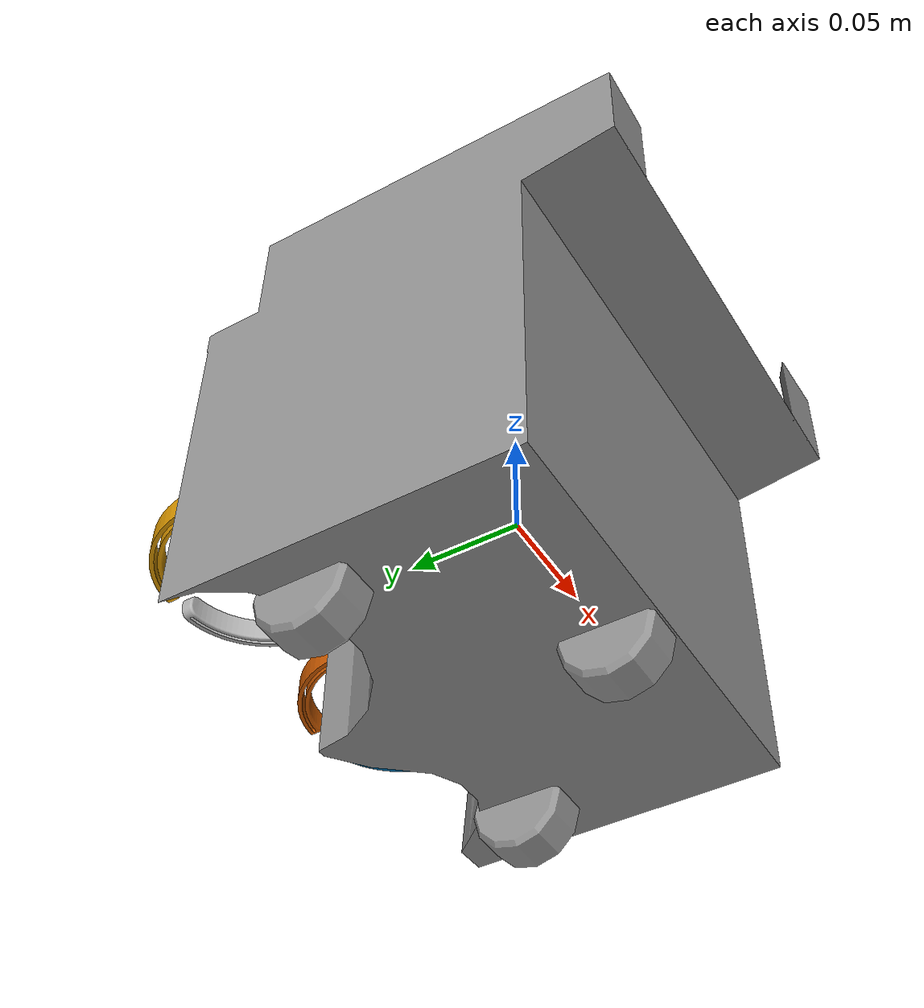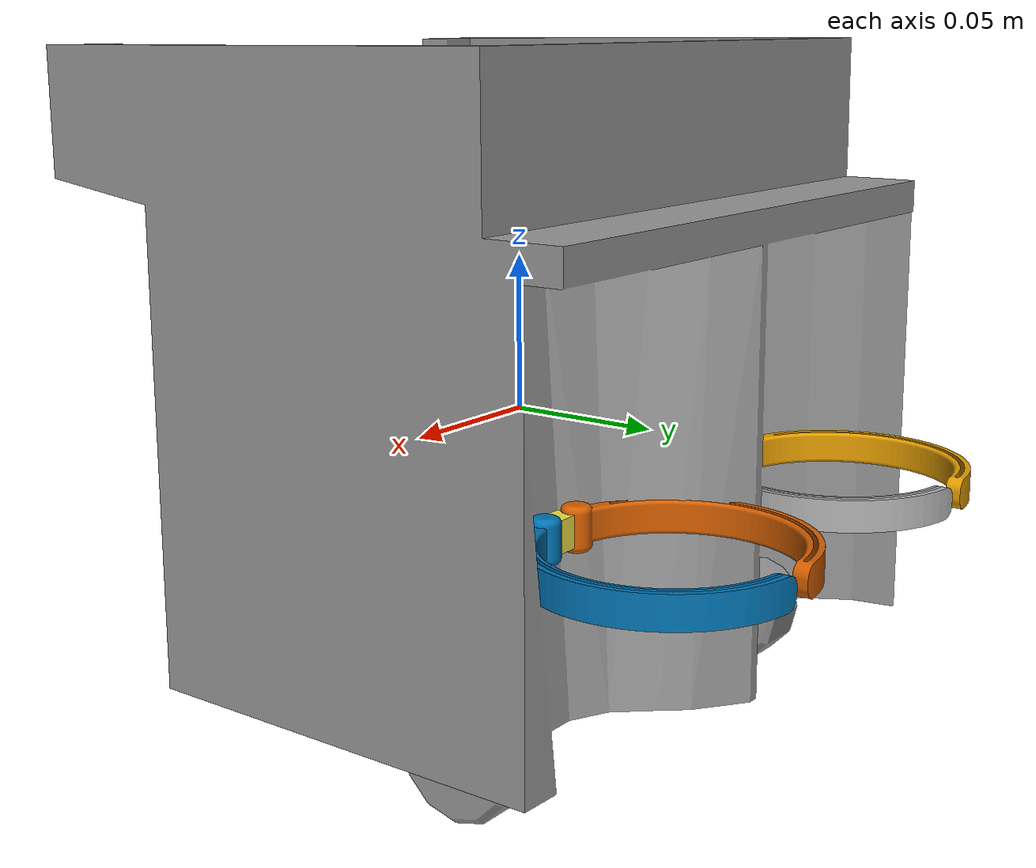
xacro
<?xml version="1.0"?>

<robot name="pikea" xmlns:xacro="http://ros.org/wiki/xacro">
  <xacro:property name="pi" value="3.1415926535897931" />

  <!-- The body -->
  <xacro:include filename="$(find nucobot_description)/pikea/urdf/pikea_base.urdf.xacro" />
  <xacro:pikea_base_macro wheel_h="-0.08"/>

  <!-- Gripper(s) -->
  <xacro:include filename="$(find nucobot_description)/pikea/urdf/pikea_gripper.urdf.xacro" />
  <xacro:gripper name="gripper_1" parent="base_link">
     <origin xyz=" 0.05 0.05 -0.02" rpy="0 0 0"/>
  </xacro:gripper>
  <xacro:gripper name="gripper_2" parent="base_link">
     <origin xyz="-0.05 0.05 -0.02" rpy="0 0 0"/>
  </xacro:gripper>

  <!-- Wheels -->
  <xacro:include filename="$(find nucobot_description)/pikea/urdf/pikea_diff_drive.urdf.xacro" />
  <xacro:diff_drive name="pikea_drive" parent="base_link" wheelSeparation="0.15" wheelDiameter="0.07">
     <origin xyz="0.0 0.04 -0.08" rpy="0 0 ${pi}"/>
  </xacro:diff_drive>

</robot>

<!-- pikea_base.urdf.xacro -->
<robot xmlns:xacro="http://ros.org/wiki/xacro">

  <xacro:property name="pi" value="3.1415926535897931" />

  <!-- Main link -->
  <xacro:macro name="pikea_base_macro" params="wheel_h">
  <joint name="base_to_footprint_joint" type="fixed">
    <parent link="base_link"/>
    <child link="base_footprint"/>
    <origin xyz="0 0.0 ${wheel_h}" rpy="0 0 0"/>
  </joint>
  <link name="base_footprint">
    <inertial>
      <mass value="0.001" />
      <origin xyz="0 0 0" />
      <inertia ixx="0.0001" ixy="0.0" ixz="0.0"
               iyy="0.0001" iyz="0.0"
               izz="0.0001" />
    </inertial>
  </link>

  <link name="base_link">
    <visual>
      <geometry>
        <mesh filename="package://nucobot_description/pikea/meshes/body.dae"/>
      </geometry>
      <origin xyz="0.001 0 0.0" rpy="0 0 0"/>
    </visual>
    <collision>
      <geometry>
        <mesh filename="package://nucobot_description/pikea/meshes/body.dae"/>
      </geometry>
      <origin xyz="0.0 0 0.0" rpy="0 0 0"/>
    </collision>
    <inertial>
      <origin xyz="0 0 ${wheel_h}"/>
      <mass value="2.4"/>
      <inertia ixx="0.27" ixy="0.0" ixz="0.0"
               iyy="0.27" iyz="0.0"
               izz="0.27" />
    </inertial>
  </link>

  <joint name="caster_joint" type="fixed">
    <parent link="base_link"/>
    <child link="caster_link"/>
    <origin xyz="0 -0.04 ${wheel_h}" rpy="${pi/2} 0 0"/>
  </joint>
  <link name="caster_link">
    <visual>
      <geometry>
        <mesh filename="package://nucobot_description/pikea/meshes/wheel.dae"/>
      </geometry>
      <origin xyz="0 0 0" rpy="0 0 0"/>
    </visual>
    <collision>
      <geometry>
        <mesh filename="package://nucobot_description/pikea/meshes/wheel.dae"/>
      </geometry>
      <origin rpy="0 0 0" xyz="0 0 0"/>
    </collision>
    <inertial>
      <mass value="0.01" />
      <origin xyz="0 0 0" />
      <inertia ixx="0.001" ixy="0.0" ixz="0.0"
               iyy="0.001" iyz="0.0"
               izz="0.001" />
    </inertial>
  </link>
  <gazebo reference="caster_link">
    <mu1>0.0</mu1>
    <mu2>0.0</mu2>
    <kp>1000000.0</kp>
    <kd>100.0</kd>
    <minDepth>0.001</minDepth>
    <maxVel>1.0</maxVel>
  </gazebo>

  </xacro:macro>
</robot>

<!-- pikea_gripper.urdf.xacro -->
<robot xmlns:xacro="http://ros.org/wiki/xacro">
  <xacro:property name="pi" value="3.1415926535897931" />

  <xacro:macro name="grip_finger" params="name parent *origin">
  <joint name="${name}_joint" type="continuous">
      <xacro:insert_block name="origin" />
      <parent link="${parent}"/>
      <child link="${name}_link"/>
      <axis xyz="0 0 1"/>
      <dynamics damping="0.7"/>
  </joint>
  <link name="${name}_link">
    <visual>
      <geometry>
        <mesh filename="package://nucobot_description/pikea/meshes/finger_visual.STL"
              scale="0.001 0.001 0.001"/>
      </geometry>
      <origin xyz="0.0 0.08 -0.007" rpy="${pi/2} 0 0"/>
    </visual>
    <collision>
      <geometry>
        <mesh filename="package://nucobot_description/pikea/meshes/finger_simple.STL"
              scale="0.001 0.001 0.001"/>
      </geometry>
      <origin xyz="0.0 0.08 -0.007" rpy="${pi/2} 0 0"/>
    </collision>
    <inertial>
      <origin xyz="0 0 0"/>
      <mass value="0.01"/>
      <inertia ixx="0.001" ixy="0.0" ixz="0.0"
               iyy="0.001" iyz="0.0"
               izz="0.001" />
    </inertial>
  </link>
  <gazebo reference="${name}_link">
    <mu1>1.0</mu1>
    <mu2>1.0</mu2>
    <kp>1000000.0</kp>
    <kd>100.0</kd>
    <minDepth>0.001</minDepth>
    <maxVel>1.0</maxVel>
  </gazebo>
  <transmission name="${name}_transmission">
    <type>transmission_interface/SimpleTransmission</type>
    <joint name="${name}_joint"/>
    <actuator name="${name}_servo">
      <hardwareInterface>EffortJointInterface</hardwareInterface>
      <mechanicalReduction>1</mechanicalReduction>
    </actuator>
  </transmission>
  </xacro:macro>

  <xacro:macro name="gripper" params="name parent *origin">
  <!-- The gripper base -->
  <joint name="${name}_joint" type="fixed">
      <xacro:insert_block name="origin" />
      <parent link="${parent}"/>
      <child link="${name}_link"/>
  </joint>
  <link name="${name}_link">
    <visual>
      <geometry>
        <box size="0.01 0.01 0.01" />
      </geometry>
      <origin xyz="0 0 0" rpy="0 0 0"/>
    </visual>
    <collision>
      <geometry>
        <box size="0.01 0.01 0.01" />
      </geometry>
      <origin xyz="0 0 0" rpy="0 0 0"/>
    </collision>
    <inertial>
      <origin xyz="0 0 0"/>
      <mass value="0.1"/>
      <inertia ixx="0.1" ixy="0.0" ixz="0.0"
               iyy="0.1" iyz="0.0"
               izz="0.1" />
    </inertial>
  </link>

  <!-- ... And two fingers -->
  <xacro:grip_finger name="${name}_rght_finger" parent="${name}_link">
     <origin xyz=" 0.003 0.0 0.0" rpy="0 0 0"/>
  </xacro:grip_finger>
  <xacro:grip_finger name="${name}_left_finger" parent="${name}_link">
     <origin xyz="-0.003 0.0 0.0" rpy="0 ${pi} 0"/>
  </xacro:grip_finger>
  </xacro:macro>
</robot>

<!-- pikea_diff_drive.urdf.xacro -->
<robot xmlns:xacro="http://ros.org/wiki/xacro">
  <xacro:property name="pi" value="3.1415926535897931"/>

  <xacro:macro name="wheel" params="name parent *origin">
  <joint name="${name}_joint" type="continuous">
    <xacro:insert_block name="origin"/>
    <parent link="${parent}"/>
    <child link="${name}_link"/>
    <axis xyz="1 0 0"/>
  </joint>
  <link name="${name}_link">
    <visual>
      <geometry>
        <mesh filename="package://nucobot_description/pikea/meshes/wheel.dae"/>
      </geometry>
      <origin xyz="0 0 0" rpy="0 0 0"/>
    </visual>
    <collision>
      <geometry>
        <mesh filename="package://nucobot_description/pikea/meshes/wheel.dae"/>
      </geometry>
      <origin rpy="0 0 0" xyz="0 0 0"/>
    </collision>
    <inertial>
      <mass value="0.01"/>
      <origin xyz="0 0 0"/>
      <inertia ixx="0.001" ixy="0.0" ixz="0.0"
               iyy="0.001" iyz="0.0"
               izz="0.001"/>
    </inertial>
  </link>
  <gazebo reference="${name}_link">
    <mu1>1.0</mu1>
    <mu2>1.0</mu2>
    <kp>1000000.0</kp>
    <kd>100.0</kd>
    <minDepth>0.001</minDepth>
    <maxVel>1.0</maxVel>
  </gazebo>
  </xacro:macro>

  <xacro:macro name="diff_drive" params="name parent *origin wheelSeparation wheelDiameter">
  <!-- Wheel axis (fake link for easier coordinate transformation) -->
  <joint name="${name}_wheel_axis_joint" type="fixed">
      <xacro:insert_block name="origin" />
      <parent link="${parent}"/>
      <child link="${name}_wheel_axis_link"/>
  </joint>
  <link name="${name}_wheel_axis_link">
    <inertial>
      <mass value="0.01"/>
      <origin xyz="0 0 0"/>
      <inertia ixx="0.001" ixy="0.0" ixz="0.0"
               iyy="0.001" iyz="0.0"
               izz="0.001"/>
    </inertial>
  </link>

  <!-- Wheels -->
  <xacro:wheel name="${name}_wheel_left" parent="${name}_wheel_axis_link">
     <origin xyz="${ wheelSeparation/2} 0.0 0.0" rpy="${ pi/2} 0 0"/>
  </xacro:wheel>
  <xacro:wheel name="${name}_wheel_rght" parent="${name}_wheel_axis_link">
     <origin xyz="${-wheelSeparation/2} 0.0 0.0" rpy="${-pi/2} 0 0"/>
  </xacro:wheel>

  <gazebo>
    <plugin name="differential_drive_controller" filename="libgazebo_ros_diff_drive.so">
      <alwaysOn>true</alwaysOn>
      <updateRate>100</updateRate>
      <leftJoint> ${name}_wheel_rght_joint</leftJoint>
      <rightJoint>${name}_wheel_left_joint</rightJoint>
      <wheelSeparation>${wheelSeparation}</wheelSeparation>
      <wheelDiameter>${wheelDiameter}</wheelDiameter>
      <torque>20</torque>
      <wheelTorque>20</wheelTorque>
      <wheelAcceleration>0</wheelAcceleration>
      <commandTopic>cmd_vel</commandTopic>
      <odometryTopic>odom</odometryTopic>
      <odometryFrame>odom</odometryFrame>
      <publishWheelTF>true</publishWheelTF>
      <publishWheelJointState>true</publishWheelJointState>
      <robotBaseFrame>${parent}</robotBaseFrame>
      <rosDebugLevel>na</rosDebugLevel>
    </plugin>
  </gazebo>
  </xacro:macro>
</robot>
